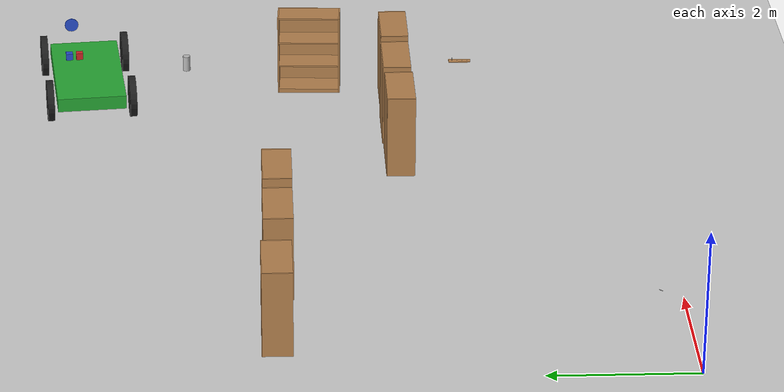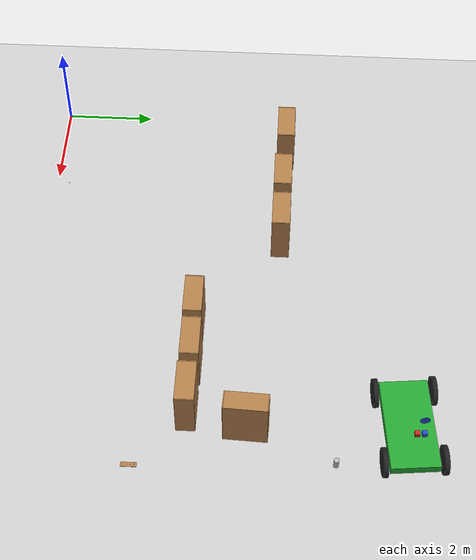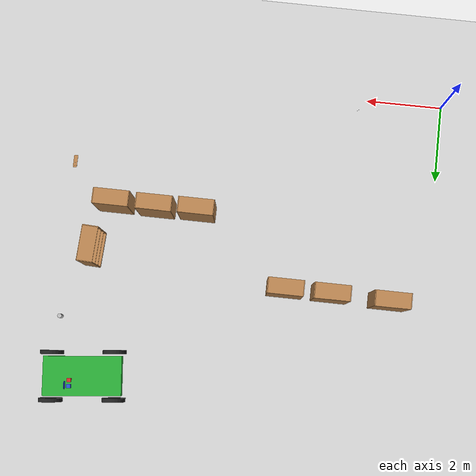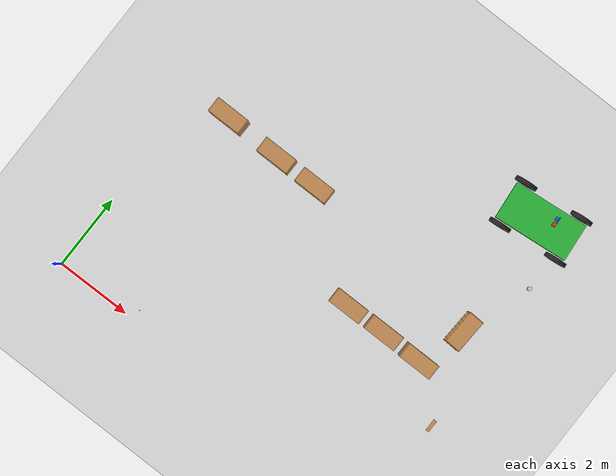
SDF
<sdf version="1.7">
 <world name="default">
  <model name="ground_plane">
   <static>1</static>
   <link name="link">
    <collision name="collision">
     <geometry><plane><normal>0 0 1</normal><size>100 100</size></plane></geometry>
     <surface>
      <contact><collide_bitmask>65535</collide_bitmask></contact>
      <friction><ode><mu>100</mu><mu2>50</mu2></ode></friction>
     </surface>
    </collision>
    <visual name="visual">
     <cast_shadows>0</cast_shadows>
     <geometry><plane><normal>0 0 1</normal><size>100 100</size></plane></geometry>
     <material>
      <script><uri>file://media/materials/scripts/gazebo.material</uri><name>Gazebo/Grey</name></script>
     </material>
    </visual>
   </link>
  </model>
  <model name="bookshelf">
   <static>1</static>
   <link name="link">
    <inertial><mass>1</mass></inertial>
    <collision name="back">
     <pose>0 0.005 0.6 0 -0 0</pose>
     <geometry><box><size>0.9 0.01 1.2</size></box></geometry>
    </collision>
    <visual name="visual1">
     <pose>0 0.005 0.6 0 -0 0</pose>
     <geometry><box><size>0.9 0.01 1.2</size></box></geometry>
     <material>
      <script><uri>file://media/materials/scripts/gazebo.material</uri><name>Gazebo/Wood</name></script>
     </material>
    </visual>
    <collision name="left_side">
     <pose>0.45 -0.195 0.6 0 -0 0</pose>
     <geometry><box><size>0.02 0.4 1.2</size></box></geometry>
    </collision>
    <visual name="visual2">
     <pose>0.45 -0.195 0.6 0 -0 0</pose>
     <geometry><box><size>0.02 0.4 1.2</size></box></geometry>
     <material>
      <script><uri>file://media/materials/scripts/gazebo.material</uri><name>Gazebo/Wood</name></script>
     </material>
    </visual>
    <collision name="right_side">
     <pose>-0.45 -0.195 0.6 0 -0 0</pose>
     <geometry><box><size>0.02 0.4 1.2</size></box></geometry>
    </collision>
    <visual name="visual3">
     <pose>-0.45 -0.195 0.6 0 -0 0</pose>
     <geometry><box><size>0.02 0.4 1.2</size></box></geometry>
     <material>
      <script><uri>file://media/materials/scripts/gazebo.material</uri><name>Gazebo/Wood</name></script>
     </material>
    </visual>
    <collision name="bottom">
     <pose>0 -0.195 0.03 0 -0 0</pose>
     <geometry><box><size>0.88 0.4 0.06</size></box></geometry>
    </collision>
    <visual name="visual4">
     <pose>0 -0.195 0.03 0 -0 0</pose>
     <geometry><box><size>0.88 0.4 0.06</size></box></geometry>
     <material>
      <script><uri>file://media/materials/scripts/gazebo.material</uri><name>Gazebo/Wood</name></script>
     </material>
    </visual>
    <collision name="top">
     <pose>0 -0.195 1.19 0 -0 0</pose>
     <geometry><box><size>0.88 0.4 0.02</size></box></geometry>
    </collision>
    <visual name="visual5">
     <pose>0 -0.195 1.19 0 -0 0</pose>
     <geometry><box><size>0.88 0.4 0.02</size></box></geometry>
     <material>
      <script><uri>file://media/materials/scripts/gazebo.material</uri><name>Gazebo/Wood</name></script>
     </material>
    </visual>
    <collision name="low_shelf">
     <pose>0 -0.195 0.43 0 -0 0</pose>
     <geometry><box><size>0.88 0.4 0.02</size></box></geometry>
    </collision>
    <visual name="visual6">
     <pose>0 -0.195 0.43 0 -0 0</pose>
     <geometry><box><size>0.88 0.4 0.02</size></box></geometry>
     <material>
      <script><uri>file://media/materials/scripts/gazebo.material</uri><name>Gazebo/Wood</name></script>
     </material>
    </visual>
    <collision name="high_shelf">
     <pose>0 -0.195 0.8 0 -0 0</pose>
     <geometry><box><size>0.88 0.4 0.02</size></box></geometry>
    </collision>
    <visual name="visual7">
     <pose>0 -0.195 0.8 0 -0 0</pose>
     <geometry><box><size>0.88 0.4 0.02</size></box></geometry>
     <material>
      <script><uri>file://media/materials/scripts/gazebo.material</uri><name>Gazebo/Wood</name></script>
     </material>
    </visual>
   </link>
   <pose>2.56224 5.52257 0 0 -0 0</pose>
  </model>
  <model name="bookshelf_0">
   <static>1</static>
   <link name="link">
    <inertial><mass>1</mass></inertial>
    <collision name="back">
     <pose>0 0.005 0.6 0 -0 0</pose>
     <geometry><box><size>0.9 0.01 1.2</size></box></geometry>
    </collision>
    <visual name="visual1">
     <pose>0 0.005 0.6 0 -0 0</pose>
     <geometry><box><size>0.9 0.01 1.2</size></box></geometry>
     <material>
      <script><uri>file://media/materials/scripts/gazebo.material</uri><name>Gazebo/Wood</name></script>
     </material>
    </visual>
    <collision name="left_side">
     <pose>0.45 -0.195 0.6 0 -0 0</pose>
     <geometry><box><size>0.02 0.4 1.2</size></box></geometry>
    </collision>
    <visual name="visual2">
     <pose>0.45 -0.195 0.6 0 -0 0</pose>
     <geometry><box><size>0.02 0.4 1.2</size></box></geometry>
     <material>
      <script><uri>file://media/materials/scripts/gazebo.material</uri><name>Gazebo/Wood</name></script>
     </material>
    </visual>
    <collision name="right_side">
     <pose>-0.45 -0.195 0.6 0 -0 0</pose>
     <geometry><box><size>0.02 0.4 1.2</size></box></geometry>
    </collision>
    <visual name="visual3">
     <pose>-0.45 -0.195 0.6 0 -0 0</pose>
     <geometry><box><size>0.02 0.4 1.2</size></box></geometry>
     <material>
      <script><uri>file://media/materials/scripts/gazebo.material</uri><name>Gazebo/Wood</name></script>
     </material>
    </visual>
    <collision name="bottom">
     <pose>0 -0.195 0.03 0 -0 0</pose>
     <geometry><box><size>0.88 0.4 0.06</size></box></geometry>
    </collision>
    <visual name="visual4">
     <pose>0 -0.195 0.03 0 -0 0</pose>
     <geometry><box><size>0.88 0.4 0.06</size></box></geometry>
     <material>
      <script><uri>file://media/materials/scripts/gazebo.material</uri><name>Gazebo/Wood</name></script>
     </material>
    </visual>
    <collision name="top">
     <pose>0 -0.195 1.19 0 -0 0</pose>
     <geometry><box><size>0.88 0.4 0.02</size></box></geometry>
    </collision>
    <visual name="visual5">
     <pose>0 -0.195 1.19 0 -0 0</pose>
     <geometry><box><size>0.88 0.4 0.02</size></box></geometry>
     <material>
      <script><uri>file://media/materials/scripts/gazebo.material</uri><name>Gazebo/Wood</name></script>
     </material>
    </visual>
    <collision name="low_shelf">
     <pose>0 -0.195 0.43 0 -0 0</pose>
     <geometry><box><size>0.88 0.4 0.02</size></box></geometry>
    </collision>
    <visual name="visual6">
     <pose>0 -0.195 0.43 0 -0 0</pose>
     <geometry><box><size>0.88 0.4 0.02</size></box></geometry>
     <material>
      <script><uri>file://media/materials/scripts/gazebo.material</uri><name>Gazebo/Wood</name></script>
     </material>
    </visual>
    <collision name="high_shelf">
     <pose>0 -0.195 0.8 0 -0 0</pose>
     <geometry><box><size>0.88 0.4 0.02</size></box></geometry>
    </collision>
    <visual name="visual7">
     <pose>0 -0.195 0.8 0 -0 0</pose>
     <geometry><box><size>0.88 0.4 0.02</size></box></geometry>
     <material>
      <script><uri>file://media/materials/scripts/gazebo.material</uri><name>Gazebo/Wood</name></script>
     </material>
    </visual>
   </link>
   <pose>1.06002 5.55838 0 0 -0 0</pose>
  </model>
  <model name="metal_peg">
   <link name="link">
    <pose>0 0 0.031 0 -0 0</pose>
    <inertial>
     <mass>0.0121</mass>
     <inertia>
      <ixx>3.90898e-06</ixx>
      <ixy>0</ixy>
      <ixz>0</ixz>
      <iyy>3.90898e-06</iyy>
      <iyz>0</iyz>
      <izz>6.58845e-08</izz>
     </inertia>
    </inertial>
    <collision name="collision">
     <geometry><cylinder><radius>0.0033</radius><length>0.062</length></cylinder></geometry>
     <surface>
      <contact>
       <poissons_ratio>0.305</poissons_ratio>
       <elastic_modulus>2e+11</elastic_modulus>
       <ode><kp>100000</kp><kd>100</kd><max_vel>100</max_vel><min_depth>0.001</min_depth></ode>
      </contact>
      <friction>
       <torsional>
        <coefficient>1</coefficient>
        <use_patch_radius>0</use_patch_radius>
        <surface_radius>0.01</surface_radius>
       </torsional>
      </friction>
     </surface>
    </collision>
    <visual name="visual">
     <geometry><cylinder><radius>0.0033</radius><length>0.062</length></cylinder></geometry>
     <material>
      <script><uri>file://media/materials/scripts/gazebo.material</uri><name>Gazebo/Grey</name></script>
     </material>
    </visual>
   </link>
   <pose>2.23232 0.2973 0.002299 1.5708 -0.78721 -0.784515</pose>
  </model>
  <model name="bookshelf_1">
   <static>1</static>
   <link name="link">
    <inertial><mass>1</mass></inertial>
    <collision name="back">
     <pose>0 0.005 0.6 0 -0 0</pose>
     <geometry><box><size>0.9 0.01 1.2</size></box></geometry>
    </collision>
    <visual name="visual1">
     <pose>0 0.005 0.6 0 -0 0</pose>
     <geometry><box><size>0.9 0.01 1.2</size></box></geometry>
     <material>
      <script><uri>file://media/materials/scripts/gazebo.material</uri><name>Gazebo/Wood</name></script>
     </material>
    </visual>
    <collision name="left_side">
     <pose>0.45 -0.195 0.6 0 -0 0</pose>
     <geometry><box><size>0.02 0.4 1.2</size></box></geometry>
    </collision>
    <visual name="visual2">
     <pose>0.45 -0.195 0.6 0 -0 0</pose>
     <geometry><box><size>0.02 0.4 1.2</size></box></geometry>
     <material>
      <script><uri>file://media/materials/scripts/gazebo.material</uri><name>Gazebo/Wood</name></script>
     </material>
    </visual>
    <collision name="right_side">
     <pose>-0.45 -0.195 0.6 0 -0 0</pose>
     <geometry><box><size>0.02 0.4 1.2</size></box></geometry>
    </collision>
    <visual name="visual3">
     <pose>-0.45 -0.195 0.6 0 -0 0</pose>
     <geometry><box><size>0.02 0.4 1.2</size></box></geometry>
     <material>
      <script><uri>file://media/materials/scripts/gazebo.material</uri><name>Gazebo/Wood</name></script>
     </material>
    </visual>
    <collision name="bottom">
     <pose>0 -0.195 0.03 0 -0 0</pose>
     <geometry><box><size>0.88 0.4 0.06</size></box></geometry>
    </collision>
    <visual name="visual4">
     <pose>0 -0.195 0.03 0 -0 0</pose>
     <geometry><box><size>0.88 0.4 0.06</size></box></geometry>
     <material>
      <script><uri>file://media/materials/scripts/gazebo.material</uri><name>Gazebo/Wood</name></script>
     </material>
    </visual>
    <collision name="top">
     <pose>0 -0.195 1.19 0 -0 0</pose>
     <geometry><box><size>0.88 0.4 0.02</size></box></geometry>
    </collision>
    <visual name="visual5">
     <pose>0 -0.195 1.19 0 -0 0</pose>
     <geometry><box><size>0.88 0.4 0.02</size></box></geometry>
     <material>
      <script><uri>file://media/materials/scripts/gazebo.material</uri><name>Gazebo/Wood</name></script>
     </material>
    </visual>
    <collision name="low_shelf">
     <pose>0 -0.195 0.43 0 -0 0</pose>
     <geometry><box><size>0.88 0.4 0.02</size></box></geometry>
    </collision>
    <visual name="visual6">
     <pose>0 -0.195 0.43 0 -0 0</pose>
     <geometry><box><size>0.88 0.4 0.02</size></box></geometry>
     <material>
      <script><uri>file://media/materials/scripts/gazebo.material</uri><name>Gazebo/Wood</name></script>
     </material>
    </visual>
    <collision name="high_shelf">
     <pose>0 -0.195 0.8 0 -0 0</pose>
     <geometry><box><size>0.88 0.4 0.02</size></box></geometry>
    </collision>
    <visual name="visual7">
     <pose>0 -0.195 0.8 0 -0 0</pose>
     <geometry><box><size>0.88 0.4 0.02</size></box></geometry>
     <material>
      <script><uri>file://media/materials/scripts/gazebo.material</uri><name>Gazebo/Wood</name></script>
     </material>
    </visual>
   </link>
   <pose>3.7289 5.51732 0 0 -0 0</pose>
  </model>
  <model name="bookshelf_2">
   <static>1</static>
   <link name="link">
    <inertial><mass>1</mass></inertial>
    <collision name="back">
     <pose>0 0.005 0.6 0 -0 0</pose>
     <geometry><box><size>0.9 0.01 1.2</size></box></geometry>
    </collision>
    <visual name="visual1">
     <pose>0 0.005 0.6 0 -0 0</pose>
     <geometry><box><size>0.9 0.01 1.2</size></box></geometry>
     <material>
      <script><uri>file://media/materials/scripts/gazebo.material</uri><name>Gazebo/Wood</name></script>
     </material>
    </visual>
    <collision name="left_side">
     <pose>0.45 -0.195 0.6 0 -0 0</pose>
     <geometry><box><size>0.02 0.4 1.2</size></box></geometry>
    </collision>
    <visual name="visual2">
     <pose>0.45 -0.195 0.6 0 -0 0</pose>
     <geometry><box><size>0.02 0.4 1.2</size></box></geometry>
     <material>
      <script><uri>file://media/materials/scripts/gazebo.material</uri><name>Gazebo/Wood</name></script>
     </material>
    </visual>
    <collision name="right_side">
     <pose>-0.45 -0.195 0.6 0 -0 0</pose>
     <geometry><box><size>0.02 0.4 1.2</size></box></geometry>
    </collision>
    <visual name="visual3">
     <pose>-0.45 -0.195 0.6 0 -0 0</pose>
     <geometry><box><size>0.02 0.4 1.2</size></box></geometry>
     <material>
      <script><uri>file://media/materials/scripts/gazebo.material</uri><name>Gazebo/Wood</name></script>
     </material>
    </visual>
    <collision name="bottom">
     <pose>0 -0.195 0.03 0 -0 0</pose>
     <geometry><box><size>0.88 0.4 0.06</size></box></geometry>
    </collision>
    <visual name="visual4">
     <pose>0 -0.195 0.03 0 -0 0</pose>
     <geometry><box><size>0.88 0.4 0.06</size></box></geometry>
     <material>
      <script><uri>file://media/materials/scripts/gazebo.material</uri><name>Gazebo/Wood</name></script>
     </material>
    </visual>
    <collision name="top">
     <pose>0 -0.195 1.19 0 -0 0</pose>
     <geometry><box><size>0.88 0.4 0.02</size></box></geometry>
    </collision>
    <visual name="visual5">
     <pose>0 -0.195 1.19 0 -0 0</pose>
     <geometry><box><size>0.88 0.4 0.02</size></box></geometry>
     <material>
      <script><uri>file://media/materials/scripts/gazebo.material</uri><name>Gazebo/Wood</name></script>
     </material>
    </visual>
    <collision name="low_shelf">
     <pose>0 -0.195 0.43 0 -0 0</pose>
     <geometry><box><size>0.88 0.4 0.02</size></box></geometry>
    </collision>
    <visual name="visual6">
     <pose>0 -0.195 0.43 0 -0 0</pose>
     <geometry><box><size>0.88 0.4 0.02</size></box></geometry>
     <material>
      <script><uri>file://media/materials/scripts/gazebo.material</uri><name>Gazebo/Wood</name></script>
     </material>
    </visual>
    <collision name="high_shelf">
     <pose>0 -0.195 0.8 0 -0 0</pose>
     <geometry><box><size>0.88 0.4 0.02</size></box></geometry>
    </collision>
    <visual name="visual7">
     <pose>0 -0.195 0.8 0 -0 0</pose>
     <geometry><box><size>0.88 0.4 0.02</size></box></geometry>
     <material>
      <script><uri>file://media/materials/scripts/gazebo.material</uri><name>Gazebo/Wood</name></script>
     </material>
    </visual>
   </link>
   <pose>8.94415 4.76652 0 0.000371 4.6e-05 -1.61564</pose>
  </model>
  <model name="bookshelf_3">
   <static>1</static>
   <link name="link">
    <inertial><mass>1</mass></inertial>
    <collision name="back">
     <pose>0 0.005 0.6 0 -0 0</pose>
     <geometry><box><size>0.9 0.01 1.2</size></box></geometry>
    </collision>
    <visual name="visual1">
     <pose>0 0.005 0.6 0 -0 0</pose>
     <geometry><box><size>0.9 0.01 1.2</size></box></geometry>
     <material>
      <script><uri>file://media/materials/scripts/gazebo.material</uri><name>Gazebo/Wood</name></script>
     </material>
    </visual>
    <collision name="left_side">
     <pose>0.45 -0.195 0.6 0 -0 0</pose>
     <geometry><box><size>0.02 0.4 1.2</size></box></geometry>
    </collision>
    <visual name="visual2">
     <pose>0.45 -0.195 0.6 0 -0 0</pose>
     <geometry><box><size>0.02 0.4 1.2</size></box></geometry>
     <material>
      <script><uri>file://media/materials/scripts/gazebo.material</uri><name>Gazebo/Wood</name></script>
     </material>
    </visual>
    <collision name="right_side">
     <pose>-0.45 -0.195 0.6 0 -0 0</pose>
     <geometry><box><size>0.02 0.4 1.2</size></box></geometry>
    </collision>
    <visual name="visual3">
     <pose>-0.45 -0.195 0.6 0 -0 0</pose>
     <geometry><box><size>0.02 0.4 1.2</size></box></geometry>
     <material>
      <script><uri>file://media/materials/scripts/gazebo.material</uri><name>Gazebo/Wood</name></script>
     </material>
    </visual>
    <collision name="bottom">
     <pose>0 -0.195 0.03 0 -0 0</pose>
     <geometry><box><size>0.88 0.4 0.06</size></box></geometry>
    </collision>
    <visual name="visual4">
     <pose>0 -0.195 0.03 0 -0 0</pose>
     <geometry><box><size>0.88 0.4 0.06</size></box></geometry>
     <material>
      <script><uri>file://media/materials/scripts/gazebo.material</uri><name>Gazebo/Wood</name></script>
     </material>
    </visual>
    <collision name="top">
     <pose>0 -0.195 1.19 0 -0 0</pose>
     <geometry><box><size>0.88 0.4 0.02</size></box></geometry>
    </collision>
    <visual name="visual5">
     <pose>0 -0.195 1.19 0 -0 0</pose>
     <geometry><box><size>0.88 0.4 0.02</size></box></geometry>
     <material>
      <script><uri>file://media/materials/scripts/gazebo.material</uri><name>Gazebo/Wood</name></script>
     </material>
    </visual>
    <collision name="low_shelf">
     <pose>0 -0.195 0.43 0 -0 0</pose>
     <geometry><box><size>0.88 0.4 0.02</size></box></geometry>
    </collision>
    <visual name="visual6">
     <pose>0 -0.195 0.43 0 -0 0</pose>
     <geometry><box><size>0.88 0.4 0.02</size></box></geometry>
     <material>
      <script><uri>file://media/materials/scripts/gazebo.material</uri><name>Gazebo/Wood</name></script>
     </material>
    </visual>
    <collision name="high_shelf">
     <pose>0 -0.195 0.8 0 -0 0</pose>
     <geometry><box><size>0.88 0.4 0.02</size></box></geometry>
    </collision>
    <visual name="visual7">
     <pose>0 -0.195 0.8 0 -0 0</pose>
     <geometry><box><size>0.88 0.4 0.02</size></box></geometry>
     <material>
      <script><uri>file://media/materials/scripts/gazebo.material</uri><name>Gazebo/Wood</name></script>
     </material>
    </visual>
   </link>
   <pose>8.32594 3.73975 0 0 -0 0</pose>
  </model>
  <model name="bookshelf_4">
   <static>1</static>
   <link name="link">
    <inertial><mass>1</mass></inertial>
    <collision name="back">
     <pose>0 0.005 0.6 0 -0 0</pose>
     <geometry><box><size>0.9 0.01 1.2</size></box></geometry>
    </collision>
    <visual name="visual1">
     <pose>0 0.005 0.6 0 -0 0</pose>
     <geometry><box><size>0.9 0.01 1.2</size></box></geometry>
     <material>
      <script><uri>file://media/materials/scripts/gazebo.material</uri><name>Gazebo/Wood</name></script>
     </material>
    </visual>
    <collision name="left_side">
     <pose>0.45 -0.195 0.6 0 -0 0</pose>
     <geometry><box><size>0.02 0.4 1.2</size></box></geometry>
    </collision>
    <visual name="visual2">
     <pose>0.45 -0.195 0.6 0 -0 0</pose>
     <geometry><box><size>0.02 0.4 1.2</size></box></geometry>
     <material>
      <script><uri>file://media/materials/scripts/gazebo.material</uri><name>Gazebo/Wood</name></script>
     </material>
    </visual>
    <collision name="right_side">
     <pose>-0.45 -0.195 0.6 0 -0 0</pose>
     <geometry><box><size>0.02 0.4 1.2</size></box></geometry>
    </collision>
    <visual name="visual3">
     <pose>-0.45 -0.195 0.6 0 -0 0</pose>
     <geometry><box><size>0.02 0.4 1.2</size></box></geometry>
     <material>
      <script><uri>file://media/materials/scripts/gazebo.material</uri><name>Gazebo/Wood</name></script>
     </material>
    </visual>
    <collision name="bottom">
     <pose>0 -0.195 0.03 0 -0 0</pose>
     <geometry><box><size>0.88 0.4 0.06</size></box></geometry>
    </collision>
    <visual name="visual4">
     <pose>0 -0.195 0.03 0 -0 0</pose>
     <geometry><box><size>0.88 0.4 0.06</size></box></geometry>
     <material>
      <script><uri>file://media/materials/scripts/gazebo.material</uri><name>Gazebo/Wood</name></script>
     </material>
    </visual>
    <collision name="top">
     <pose>0 -0.195 1.19 0 -0 0</pose>
     <geometry><box><size>0.88 0.4 0.02</size></box></geometry>
    </collision>
    <visual name="visual5">
     <pose>0 -0.195 1.19 0 -0 0</pose>
     <geometry><box><size>0.88 0.4 0.02</size></box></geometry>
     <material>
      <script><uri>file://media/materials/scripts/gazebo.material</uri><name>Gazebo/Wood</name></script>
     </material>
    </visual>
    <collision name="low_shelf">
     <pose>0 -0.195 0.43 0 -0 0</pose>
     <geometry><box><size>0.88 0.4 0.02</size></box></geometry>
    </collision>
    <visual name="visual6">
     <pose>0 -0.195 0.43 0 -0 0</pose>
     <geometry><box><size>0.88 0.4 0.02</size></box></geometry>
     <material>
      <script><uri>file://media/materials/scripts/gazebo.material</uri><name>Gazebo/Wood</name></script>
     </material>
    </visual>
    <collision name="high_shelf">
     <pose>0 -0.195 0.8 0 -0 0</pose>
     <geometry><box><size>0.88 0.4 0.02</size></box></geometry>
    </collision>
    <visual name="visual7">
     <pose>0 -0.195 0.8 0 -0 0</pose>
     <geometry><box><size>0.88 0.4 0.02</size></box></geometry>
     <material>
      <script><uri>file://media/materials/scripts/gazebo.material</uri><name>Gazebo/Wood</name></script>
     </material>
    </visual>
   </link>
   <pose>7.23532 3.7535 0 0 -0 0</pose>
  </model>
  <model name="bookshelf_5">
   <static>1</static>
   <link name="link">
    <inertial><mass>1</mass></inertial>
    <collision name="back">
     <pose>0 0.005 0.6 0 -0 0</pose>
     <geometry><box><size>0.9 0.01 1.2</size></box></geometry>
    </collision>
    <visual name="visual1">
     <pose>0 0.005 0.6 0 -0 0</pose>
     <geometry><box><size>0.9 0.01 1.2</size></box></geometry>
     <material>
      <script><uri>file://media/materials/scripts/gazebo.material</uri><name>Gazebo/Wood</name></script>
     </material>
    </visual>
    <collision name="left_side">
     <pose>0.45 -0.195 0.6 0 -0 0</pose>
     <geometry><box><size>0.02 0.4 1.2</size></box></geometry>
    </collision>
    <visual name="visual2">
     <pose>0.45 -0.195 0.6 0 -0 0</pose>
     <geometry><box><size>0.02 0.4 1.2</size></box></geometry>
     <material>
      <script><uri>file://media/materials/scripts/gazebo.material</uri><name>Gazebo/Wood</name></script>
     </material>
    </visual>
    <collision name="right_side">
     <pose>-0.45 -0.195 0.6 0 -0 0</pose>
     <geometry><box><size>0.02 0.4 1.2</size></box></geometry>
    </collision>
    <visual name="visual3">
     <pose>-0.45 -0.195 0.6 0 -0 0</pose>
     <geometry><box><size>0.02 0.4 1.2</size></box></geometry>
     <material>
      <script><uri>file://media/materials/scripts/gazebo.material</uri><name>Gazebo/Wood</name></script>
     </material>
    </visual>
    <collision name="bottom">
     <pose>0 -0.195 0.03 0 -0 0</pose>
     <geometry><box><size>0.88 0.4 0.06</size></box></geometry>
    </collision>
    <visual name="visual4">
     <pose>0 -0.195 0.03 0 -0 0</pose>
     <geometry><box><size>0.88 0.4 0.06</size></box></geometry>
     <material>
      <script><uri>file://media/materials/scripts/gazebo.material</uri><name>Gazebo/Wood</name></script>
     </material>
    </visual>
    <collision name="top">
     <pose>0 -0.195 1.19 0 -0 0</pose>
     <geometry><box><size>0.88 0.4 0.02</size></box></geometry>
    </collision>
    <visual name="visual5">
     <pose>0 -0.195 1.19 0 -0 0</pose>
     <geometry><box><size>0.88 0.4 0.02</size></box></geometry>
     <material>
      <script><uri>file://media/materials/scripts/gazebo.material</uri><name>Gazebo/Wood</name></script>
     </material>
    </visual>
    <collision name="low_shelf">
     <pose>0 -0.195 0.43 0 -0 0</pose>
     <geometry><box><size>0.88 0.4 0.02</size></box></geometry>
    </collision>
    <visual name="visual6">
     <pose>0 -0.195 0.43 0 -0 0</pose>
     <geometry><box><size>0.88 0.4 0.02</size></box></geometry>
     <material>
      <script><uri>file://media/materials/scripts/gazebo.material</uri><name>Gazebo/Wood</name></script>
     </material>
    </visual>
    <collision name="high_shelf">
     <pose>0 -0.195 0.8 0 -0 0</pose>
     <geometry><box><size>0.88 0.4 0.02</size></box></geometry>
    </collision>
    <visual name="visual7">
     <pose>0 -0.195 0.8 0 -0 0</pose>
     <geometry><box><size>0.88 0.4 0.02</size></box></geometry>
     <material>
      <script><uri>file://media/materials/scripts/gazebo.material</uri><name>Gazebo/Wood</name></script>
     </material>
    </visual>
   </link>
   <pose>6.1723 3.73975 0 0 -0 0</pose>
  </model>
  <model name="car">
   <link name="chassis">
    <pose>0 0 0.3 0 -0 0</pose>
    <collision name="collision"><geometry><box><size>2 1 0.2</size></box></geometry></collision>
    <visual name="visual">
     <geometry><box><size>2 1 0.2</size></box></geometry>
     <material>
      <script><uri>file://media/materials/scripts/gazebo.material</uri><name>Gazebo/Green</name></script>
     </material>
    </visual>
    <inertial>
     <inertia><ixx>1</ixx><ixy>0</ixy><ixz>0</ixz><iyy>1</iyy><iyz>0</iyz><izz>1</izz></inertia>
     <mass>1</mass>
    </inertial>
   </link>
   <link name="front_left_wheel">
    <pose>0.8 0.6 0.3 -0 1.5707 1.5707</pose>
    <collision name="collision">
     <geometry><cylinder><radius>0.3</radius><length>0.1</length></cylinder></geometry>
    </collision>
    <visual name="visual">
     <geometry><cylinder><radius>0.3</radius><length>0.1</length></cylinder></geometry>
     <material>
      <script><uri>file://media/materials/scripts/gazebo.material</uri><name>Gazebo/Black</name></script>
     </material>
    </visual>
    <inertial>
     <inertia><ixx>1</ixx><ixy>0</ixy><ixz>0</ixz><iyy>1</iyy><iyz>0</iyz><izz>1</izz></inertia>
     <mass>1</mass>
    </inertial>
   </link>
   <link name="front_right_wheel">
    <pose>0.8 -0.6 0.3 -0 1.5707 1.5707</pose>
    <collision name="collision">
     <geometry><cylinder><radius>0.3</radius><length>0.1</length></cylinder></geometry>
    </collision>
    <visual name="visual">
     <geometry><cylinder><radius>0.3</radius><length>0.1</length></cylinder></geometry>
     <material>
      <script><uri>file://media/materials/scripts/gazebo.material</uri><name>Gazebo/Black</name></script>
     </material>
    </visual>
    <inertial>
     <inertia><ixx>1</ixx><ixy>0</ixy><ixz>0</ixz><iyy>1</iyy><iyz>0</iyz><izz>1</izz></inertia>
     <mass>1</mass>
    </inertial>
   </link>
   <link name="back_right_wheel">
    <pose>-0.8 -0.6 0.3 -0 1.5707 1.5707</pose>
    <collision name="collision">
     <geometry><cylinder><radius>0.3</radius><length>0.1</length></cylinder></geometry>
    </collision>
    <visual name="visual">
     <geometry><cylinder><radius>0.3</radius><length>0.1</length></cylinder></geometry>
     <material>
      <script><uri>file://media/materials/scripts/gazebo.material</uri><name>Gazebo/Black</name></script>
     </material>
    </visual>
    <inertial>
     <inertia><ixx>1</ixx><ixy>0</ixy><ixz>0</ixz><iyy>1</iyy><iyz>0</iyz><izz>1</izz></inertia>
     <mass>1</mass>
    </inertial>
   </link>
   <link name="back_left_wheel">
    <pose>-0.8 0.6 0.3 -0 1.5707 1.5707</pose>
    <collision name="collision">
     <geometry><cylinder><radius>0.3</radius><length>0.1</length></cylinder></geometry>
    </collision>
    <visual name="visual">
     <geometry><cylinder><radius>0.3</radius><length>0.1</length></cylinder></geometry>
     <material>
      <script><uri>file://media/materials/scripts/gazebo.material</uri><name>Gazebo/Black</name></script>
     </material>
    </visual>
    <inertial>
     <inertia><ixx>1</ixx><ixy>0</ixy><ixz>0</ixz><iyy>1</iyy><iyz>0</iyz><izz>1</izz></inertia>
     <mass>1</mass>
    </inertial>
   </link>
   <link name="gas_pedal">
    <pose>0.3 0.1 0.5 0 -0 0</pose>
    <collision name="collision"><geometry><box><size>0.1 0.1 0.1</size></box></geometry></collision>
    <visual name="visual">
     <geometry><box><size>0.1 0.1 0.1</size></box></geometry>
     <material>
      <script><uri>file://media/materials/scripts/gazebo.material</uri><name>Gazebo/Red</name></script>
     </material>
    </visual>
    <inertial>
     <inertia><ixx>1</ixx><ixy>0</ixy><ixz>0</ixz><iyy>1</iyy><iyz>0</iyz><izz>1</izz></inertia>
     <mass>1</mass>
    </inertial>
   </link>
   <link name="brake_pedal">
    <pose>0.3 0.25 0.5 0 -0 0</pose>
    <collision name="collision"><geometry><box><size>0.1 0.1 0.1</size></box></geometry></collision>
    <visual name="visual">
     <geometry><box><size>0.1 0.1 0.1</size></box></geometry>
     <material>
      <script><uri>file://media/materials/scripts/gazebo.material</uri><name>Gazebo/Blue</name></script>
     </material>
    </visual>
    <inertial>
     <inertia><ixx>1</ixx><ixy>0</ixy><ixz>0</ixz><iyy>1</iyy><iyz>0</iyz><izz>1</izz></inertia>
     <mass>1</mass>
    </inertial>
   </link>
   <link name="steering_wheel">
    <pose>0.3 0.2 1 0 1.5707 0</pose>
    <collision name="collision">
     <geometry><cylinder><radius>0.1</radius><length>0.01</length></cylinder></geometry>
    </collision>
    <visual name="visual">
     <geometry><cylinder><radius>0.1</radius><length>0.01</length></cylinder></geometry>
     <material>
      <script><uri>file://media/materials/scripts/gazebo.material</uri><name>Gazebo/Blue</name></script>
     </material>
    </visual>
    <inertial>
     <inertia><ixx>1</ixx><ixy>0</ixy><ixz>0</ixz><iyy>1</iyy><iyz>0</iyz><izz>1</izz></inertia>
     <mass>1</mass>
    </inertial>
   </link>
   <joint name="gas_joint" type="prismatic">
    <parent>chassis</parent>
    <child>gas_pedal</child>
    <axis>
     <xyz expressed_in="__model__">1 0 0</xyz>
     <limit><lower>0</lower><upper>0.2</upper></limit>
     <dynamics><spring_reference>0</spring_reference><spring_stiffness>0</spring_stiffness></dynamics>
    </axis>
   </joint>
   <joint name="brake_joint" type="prismatic">
    <parent>chassis</parent>
    <child>brake_pedal</child>
    <axis>
     <xyz expressed_in="__model__">1 0 0</xyz>
     <limit><lower>0</lower><upper>0.2</upper></limit>
     <dynamics><spring_reference>0</spring_reference><spring_stiffness>0</spring_stiffness></dynamics>
    </axis>
   </joint>
   <joint name="steering_joint" type="revolute">
    <parent>chassis</parent>
    <child>steering_wheel</child>
    <axis>
     <xyz expressed_in="__model__">1 0 0</xyz>
     <limit><lower>-7.853</lower><upper>7.853</upper></limit>
     <dynamics><spring_reference>0</spring_reference><spring_stiffness>0</spring_stiffness></dynamics>
    </axis>
   </joint>
   <joint name="front_left_joint" type="revolute2">
    <parent>chassis</parent>
    <child>front_left_wheel</child>
    <axis>
     <xyz expressed_in="__model__">0 0 1</xyz>
     <limit><lower>-3.23525e-06</lower><upper>-3.23525e-06</upper></limit>
     <dynamics><spring_reference>0</spring_reference><spring_stiffness>0</spring_stiffness></dynamics>
    </axis>
    <axis2>
     <xyz expressed_in="__model__">0 1 0</xyz>
     <limit><upper>1e+16</upper><lower>-1e+16</lower></limit>
     <dynamics><spring_reference>0</spring_reference><spring_stiffness>0</spring_stiffness></dynamics>
    </axis2>
    <physics><ode><limit><cfm>0</cfm><erp>0.9</erp></limit></ode></physics>
   </joint>
   <joint name="front_right_joint" type="revolute2">
    <parent>chassis</parent>
    <child>front_right_wheel</child>
    <axis>
     <xyz expressed_in="__model__">0 0 1</xyz>
     <limit><lower>-3.23525e-06</lower><upper>-3.23525e-06</upper></limit>
     <dynamics><spring_reference>0</spring_reference><spring_stiffness>0</spring_stiffness></dynamics>
    </axis>
    <axis2>
     <xyz expressed_in="__model__">0 1 0</xyz>
     <limit><upper>1e+16</upper><lower>-1e+16</lower></limit>
     <dynamics><spring_reference>0</spring_reference><spring_stiffness>0</spring_stiffness></dynamics>
    </axis2>
    <physics><ode><limit><cfm>0</cfm><erp>0.9</erp></limit></ode></physics>
   </joint>
   <joint name="back_right_joint" type="revolute2">
    <parent>chassis</parent>
    <child>back_right_wheel</child>
    <axis>
     <xyz expressed_in="__model__">0 0 1</xyz>
     <limit><lower>0</lower><upper>0</upper></limit>
     <dynamics><spring_reference>0</spring_reference><spring_stiffness>0</spring_stiffness></dynamics>
    </axis>
    <axis2>
     <xyz expressed_in="__model__">0 1 0</xyz>
     <limit><upper>1e+16</upper><lower>-1e+16</lower></limit>
     <dynamics><spring_reference>0</spring_reference><spring_stiffness>0</spring_stiffness></dynamics>
    </axis2>
    <physics><ode><limit><cfm>0</cfm><erp>0.9</erp></limit></ode></physics>
   </joint>
   <joint name="back_left_joint" type="revolute2">
    <parent>chassis</parent>
    <child>back_left_wheel</child>
    <axis>
     <xyz expressed_in="__model__">0 0 1</xyz>
     <limit><lower>0</lower><upper>0</upper></limit>
     <dynamics><spring_reference>0</spring_reference><spring_stiffness>0</spring_stiffness></dynamics>
    </axis>
    <axis2>
     <xyz expressed_in="__model__">0 1 0</xyz>
     <limit><upper>1e+16</upper><lower>-1e+16</lower></limit>
     <dynamics><spring_reference>0</spring_reference><spring_stiffness>0</spring_stiffness></dynamics>
    </axis2>
    <physics><ode><limit><cfm>0</cfm><erp>0.9</erp></limit></ode></physics>
   </joint>
   <plugin name="vehicle" filename="libVehiclePlugin.so">
    <front_left>front_left_joint</front_left>
    <front_right>front_right_joint</front_right>
    <back_left>back_left_joint</back_left>
    <back_right>back_right_joint</back_right>
    <gas>gas_joint</gas>
    <brake>brake_joint</brake>
    <steering>steering_joint</steering>
    <front_power>10</front_power>
    <rear_power>10</rear_power>
    <tire_angle_range>0.5</tire_angle_range>
    <max_speed>10</max_speed>
    <aero_load>0.1</aero_load>
   </plugin>
   <pose>8.608 8.06181 1.1e-05 -9e-06 2e-06 0.10083</pose>
  </model>
  <model name="beer">
   <link name="link">
    <pose>0 0 0.115 0 -0 0</pose>
    <inertial>
     <mass>0.39</mass>
     <inertia><ixx>0.00058</ixx><ixy>0</ixy><ixz>0</ixz><iyy>0.00058</iyy><iyz>0</iyz><izz>0.00019</izz></inertia>
    </inertial>
    <collision name="collision">
     <geometry><cylinder><radius>0.055</radius><length>0.23</length></cylinder></geometry>
    </collision>
    <visual name="visual">
     <geometry><cylinder><radius>0.055</radius><length>0.23</length></cylinder></geometry>
     <material>
      <script>
       <uri>model://beer/materials/scripts</uri>
       <uri>model://beer/materials/textures</uri>
       <name>Beer/Diffuse</name>
      </script>
     </material>
    </visual>
   </link>
   <pose>9.42234 6.61022 -7e-06 -1e-06 0 -2.1e-05</pose>
  </model>
  <model name="metal_peg_board">
   <frame name="wooden_board::__model__" attached_to="wooden_board::base">
    <pose relative_to="__model__">0 0 0 0 -0 0</pose>
   </frame>
   <link name="wooden_board::base">
    <pose relative_to="wooden_board::__model__">0 0 0.00523 0 -0 0</pose>
    <inertial>
     <mass>0.2765</mass>
     <inertia>
      <ixx>0.0025148</ixx>
      <ixy>0</ixy>
      <ixz>0</ixz>
      <iyy>0.00024037</iyy>
      <iyz>0</iyz>
      <izz>0.00275013</izz>
     </inertia>
    </inertial>
    <collision name="collision">
     <geometry><box><size>0.1016 0.3302 0.01046</size></box></geometry>
     <surface>
      <contact>
       <poissons_ratio>0.347</poissons_ratio>
       <elastic_modulus>8.8e+09</elastic_modulus>
       <ode><kp>100000</kp><kd>100</kd><max_vel>100</max_vel><min_depth>0.001</min_depth></ode>
      </contact>
      <friction>
       <torsional>
        <coefficient>1</coefficient>
        <use_patch_radius>0</use_patch_radius>
        <surface_radius>0.01</surface_radius>
       </torsional>
      </friction>
     </surface>
    </collision>
    <visual name="visual">
     <geometry><box><size>0.1016 0.3302 0.01046</size></box></geometry>
     <material>
      <script><uri>file://media/materials/scripts/gazebo.material</uri><name>Gazebo/Wood</name></script>
     </material>
    </visual>
    <visual name="tee_nut_1">
     <pose>0 -0.116 0 0 -0 0</pose>
     <geometry><cylinder><radius>0.00635</radius><length>0.0105646</length></cylinder></geometry>
     <material>
      <script><uri>file://media/materials/scripts/gazebo.material</uri><name>Gazebo/Grey</name></script>
     </material>
    </visual>
    <visual name="tee_nut_2">
     <pose>0 -0.038 0 0 -0 0</pose>
     <geometry><cylinder><radius>0.00635</radius><length>0.0105646</length></cylinder></geometry>
     <material>
      <script><uri>file://media/materials/scripts/gazebo.material</uri><name>Gazebo/Grey</name></script>
     </material>
    </visual>
    <visual name="tee_nut_3">
     <pose>0 0.038 0 0 -0 0</pose>
     <geometry><cylinder><radius>0.00635</radius><length>0.0105646</length></cylinder></geometry>
     <material>
      <script><uri>file://media/materials/scripts/gazebo.material</uri><name>Gazebo/Grey</name></script>
     </material>
    </visual>
    <visual name="tee_nut_4">
     <pose>0 0.116 0 0 -0 0</pose>
     <geometry><cylinder><radius>0.00635</radius><length>0.0105646</length></cylinder></geometry>
     <material>
      <script><uri>file://media/materials/scripts/gazebo.material</uri><name>Gazebo/Grey</name></script>
     </material>
    </visual>
   </link>
   <frame name="peg::__model__" attached_to="peg::link">
    <pose relative_to="__model__">0 0.116 0 0 -0 0</pose>
   </frame>
   <link name="peg::link">
    <pose relative_to="peg::__model__">0 0 0.031 0 -0 0</pose>
    <inertial>
     <mass>0.0121</mass>
     <inertia>
      <ixx>3.90898e-06</ixx>
      <ixy>0</ixy>
      <ixz>0</ixz>
      <iyy>3.90898e-06</iyy>
      <iyz>0</iyz>
      <izz>6.58845e-08</izz>
     </inertia>
    </inertial>
    <collision name="collision">
     <geometry><cylinder><radius>0.0033</radius><length>0.062</length></cylinder></geometry>
     <surface>
      <contact>
       <poissons_ratio>0.305</poissons_ratio>
       <elastic_modulus>2e+11</elastic_modulus>
       <ode><kp>100000</kp><kd>100</kd><max_vel>100</max_vel><min_depth>0.001</min_depth></ode>
      </contact>
      <friction>
       <torsional>
        <coefficient>1</coefficient>
        <use_patch_radius>0</use_patch_radius>
        <surface_radius>0.01</surface_radius>
       </torsional>
      </friction>
     </surface>
    </collision>
    <visual name="visual">
     <geometry><cylinder><radius>0.0033</radius><length>0.062</length></cylinder></geometry>
     <material>
      <script><uri>file://media/materials/scripts/gazebo.material</uri><name>Gazebo/Grey</name></script>
     </material>
    </visual>
   </link>
   <joint name="board_peg" type="revolute">
    <parent>wooden_board::base</parent>
    <child>peg::link</child>
    <axis>
     <xyz>0 0 1</xyz>
     <limit><upper>0</upper><lower>0</lower></limit>
     <dynamics><spring_reference>0</spring_reference><spring_stiffness>0</spring_stiffness></dynamics>
    </axis>
   </joint>
   <pose>9.61177 2.4697 -0.001004 1e-05 -0 0</pose>
  </model>
 </world>
</sdf>
